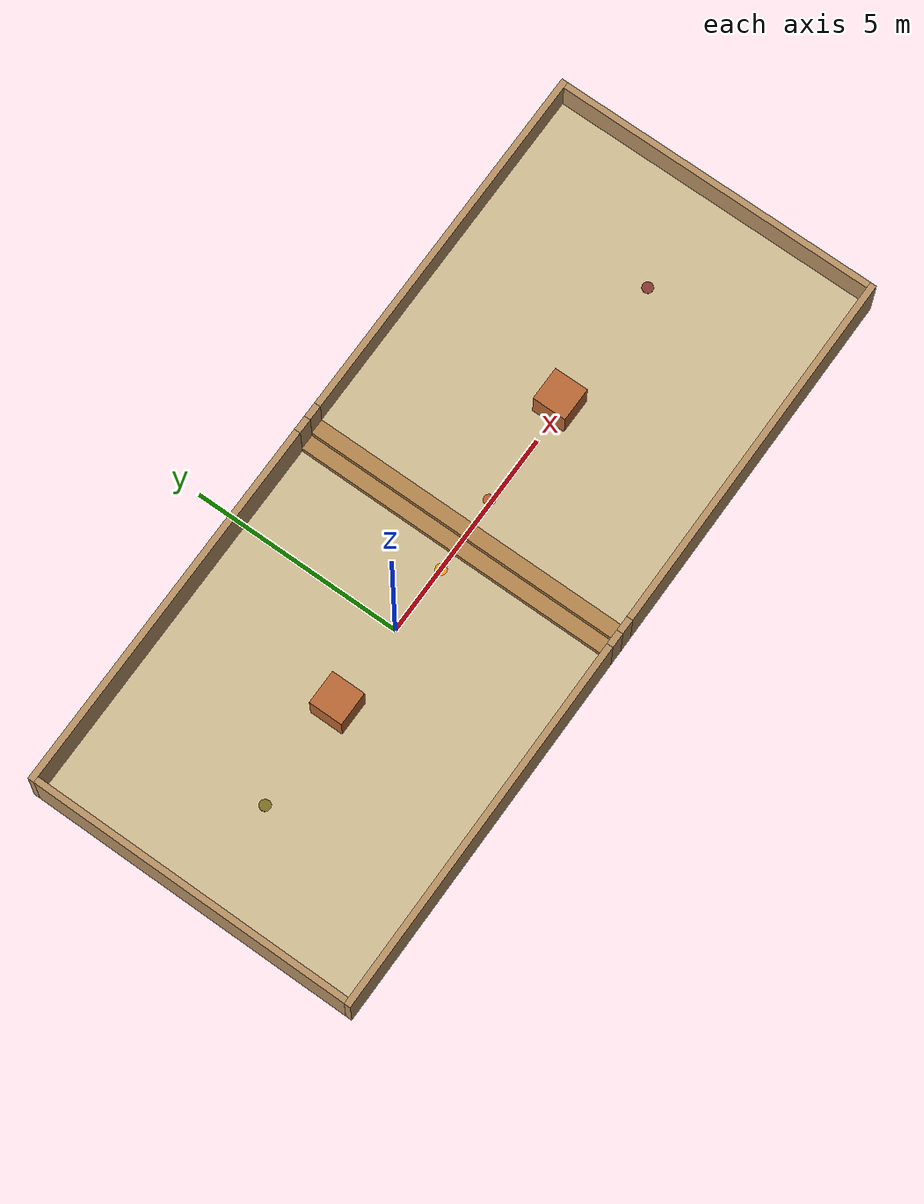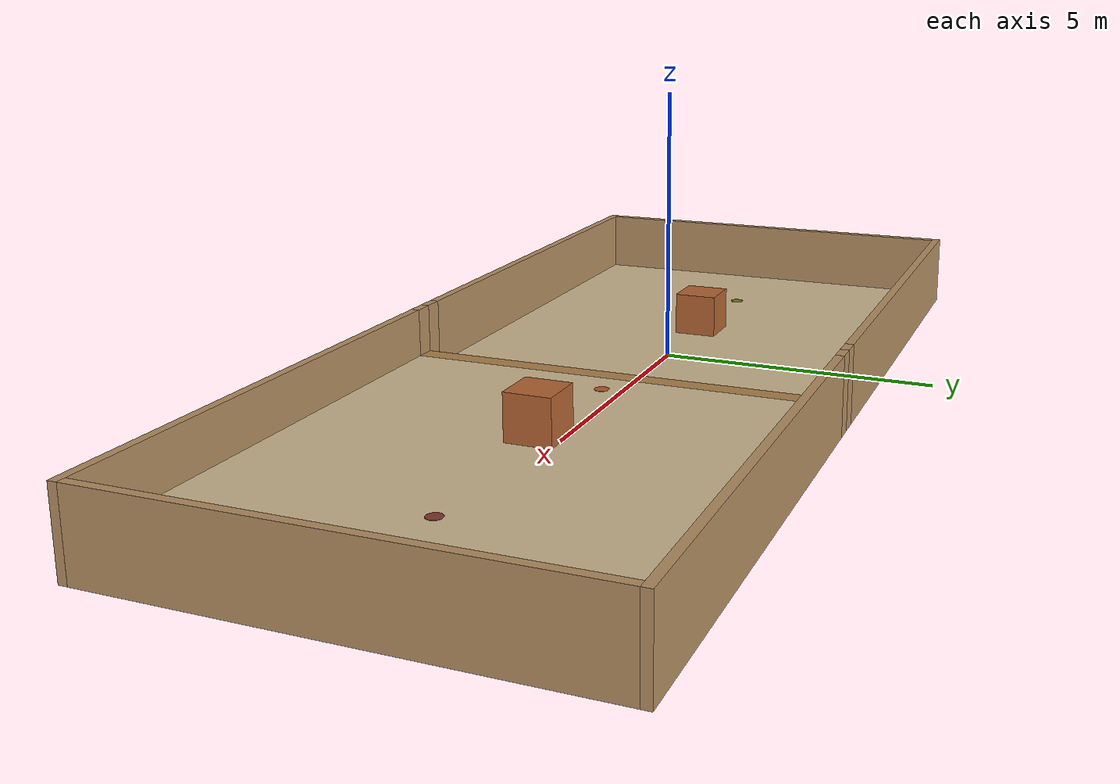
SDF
<?xml version="1.0" encoding="utf-8"?>
<sdf version="1.6">
  <world name="two_steps">
    <gravity>0 0 -9.81</gravity>
    <physics name="default_physics" type="ode">
      <max_step_size>0.001</max_step_size>
      <real_time_update_rate>1000</real_time_update_rate>
    </physics>
    <scene>
      <ambient>0.52 0.52 0.52 1</ambient>
      <background>0.87 0.81 0.71 1</background>
      <shadows>true</shadows>
    </scene>
    <light name="sun" type="directional">
      <pose>0 0 12 0 0 0</pose>
      <cast_shadows>true</cast_shadows>
      <diffuse>0.85 0.85 0.85 1</diffuse>
      <specular>0.15 0.15 0.15 1</specular>
      <direction>-0.4 0.2 -1</direction>
      <attenuation>
        <range>1000</range>
        <constant>0.9</constant>
        <linear>0.01</linear>
        <quadratic>0.001</quadratic>
      </attenuation>
    </light>
    <!-- 地基位于围墙内侧：X=[-6.85,11.35]、Y=[-3.825,3.825]；下层顶面 Z=0。 -->
    <model name="lower_ground">
      <static>true</static>
      <pose>2.25 0 -0.10 0 0 0</pose>
      <link name="body">
        <collision name="collision">
          <geometry>
            <box>
              <size>18.2 7.65 0.20</size>
            </box>
          </geometry>
        </collision>
        <visual name="visual">
          <geometry>
            <box>
              <size>18.2 7.65 0.20</size>
            </box>
          </geometry>
          <material>
            <ambient>0.81 0.73 0.57 1</ambient>
            <diffuse>0.81 0.73 0.57 1</diffuse>
          </material>
        </visual>
      </link>
    </model>
    <!-- 两级楼梯共用暖沙色，两个平台共用奶油色；外围侧面由同色全高围墙封闭。 -->
    <!-- 恰好两级：第一级 X=[2.00,2.35] 顶面 Z=0.17；第二级 X=[2.35,2.70] 顶面 Z=0.34。 -->
    <model name="step_1">
      <static>true</static>
      <pose>2.175 0 0.085 0 0 0</pose>
      <link name="body">
        <collision name="collision">
          <geometry>
            <box>
              <size>0.35 7.65 0.17</size>
            </box>
          </geometry>
        </collision>
        <visual name="visual">
          <geometry>
            <box>
              <size>0.35 7.65 0.17</size>
            </box>
          </geometry>
          <material>
            <ambient>0.70 0.52 0.30 1</ambient>
            <diffuse>0.70 0.52 0.30 1</diffuse>
          </material>
        </visual>
      </link>
    </model>
    <model name="step_2">
      <static>true</static>
      <pose>2.525 0 0.17 0 0 0</pose>
      <link name="body">
        <collision name="collision">
          <geometry>
            <box>
              <size>0.35 7.65 0.34</size>
            </box>
          </geometry>
        </collision>
        <visual name="visual">
          <geometry>
            <box>
              <size>0.35 7.65 0.34</size>
            </box>
          </geometry>
          <material>
            <ambient>0.70 0.52 0.30 1</ambient>
            <diffuse>0.70 0.52 0.30 1</diffuse>
          </material>
        </visual>
      </link>
    </model>
    <!-- 上平台 X=[2.70,11.35]，顶面 Z=0.34，与第二级齐平，无第三级高度变化。 -->
    <model name="upper_platform">
      <static>true</static>
      <pose>7.025 0 0.17 0 0 0</pose>
      <link name="body">
        <collision name="collision">
          <geometry>
            <box>
              <size>8.65 7.65 0.34</size>
            </box>
          </geometry>
        </collision>
        <visual name="visual">
          <geometry>
            <box>
              <size>8.65 7.65 0.34</size>
            </box>
          </geometry>
          <material>
            <ambient>0.81 0.73 0.57 1</ambient>
            <diffuse>0.81 0.73 0.57 1</diffuse>
          </material>
        </visual>
      </link>
    </model>
    <!-- 固定边墙与障碍都有碰撞体，为后续激光提供几何特征；楼梯中央通道保持净空。 -->
    <model name="lower_left_wall">
      <static>true</static>
      <pose>-2.5 3.9 0.50 0 0 0</pose>
      <link name="body">
        <collision name="collision">
          <geometry>
            <box>
              <size>9.0 0.15 1.40</size>
            </box>
          </geometry>
        </collision>
        <visual name="visual">
          <geometry>
            <box>
              <size>9.0 0.15 1.40</size>
            </box>
          </geometry>
          <material>
            <ambient>0.72 0.57 0.39 1</ambient>
            <diffuse>0.72 0.57 0.39 1</diffuse>
          </material>
        </visual>
      </link>
    </model>
    <model name="lower_right_wall">
      <static>true</static>
      <pose>-2.5 -3.9 0.50 0 0 0</pose>
      <link name="body">
        <collision name="collision">
          <geometry>
            <box>
              <size>9.0 0.15 1.40</size>
            </box>
          </geometry>
        </collision>
        <visual name="visual">
          <geometry>
            <box>
              <size>9.0 0.15 1.40</size>
            </box>
          </geometry>
          <material>
            <ambient>0.72 0.57 0.39 1</ambient>
            <diffuse>0.72 0.57 0.39 1</diffuse>
          </material>
        </visual>
      </link>
    </model>
    <!-- 所有围墙统一覆盖世界 Z=[-0.20,1.20]、厚 0.15 m；墙体下延至地基底面，完整包围平台和楼梯，无外露侧面或缺口。 -->
    <model name="step_1_left_wall">
      <static>true</static>
      <pose>2.175 3.9 0.50 0 0 0</pose>
      <link name="body">
        <collision name="collision">
          <geometry>
            <box>
              <size>0.35 0.15 1.40</size>
            </box>
          </geometry>
        </collision>
        <visual name="visual">
          <geometry>
            <box>
              <size>0.35 0.15 1.40</size>
            </box>
          </geometry>
          <material>
            <ambient>0.72 0.57 0.39 1</ambient>
            <diffuse>0.72 0.57 0.39 1</diffuse>
          </material>
        </visual>
      </link>
    </model>
    <model name="step_1_right_wall">
      <static>true</static>
      <pose>2.175 -3.9 0.50 0 0 0</pose>
      <link name="body">
        <collision name="collision">
          <geometry>
            <box>
              <size>0.35 0.15 1.40</size>
            </box>
          </geometry>
        </collision>
        <visual name="visual">
          <geometry>
            <box>
              <size>0.35 0.15 1.40</size>
            </box>
          </geometry>
          <material>
            <ambient>0.72 0.57 0.39 1</ambient>
            <diffuse>0.72 0.57 0.39 1</diffuse>
          </material>
        </visual>
      </link>
    </model>
    <model name="step_2_left_wall">
      <static>true</static>
      <pose>2.525 3.9 0.50 0 0 0</pose>
      <link name="body">
        <collision name="collision">
          <geometry>
            <box>
              <size>0.35 0.15 1.40</size>
            </box>
          </geometry>
        </collision>
        <visual name="visual">
          <geometry>
            <box>
              <size>0.35 0.15 1.40</size>
            </box>
          </geometry>
          <material>
            <ambient>0.72 0.57 0.39 1</ambient>
            <diffuse>0.72 0.57 0.39 1</diffuse>
          </material>
        </visual>
      </link>
    </model>
    <model name="step_2_right_wall">
      <static>true</static>
      <pose>2.525 -3.9 0.50 0 0 0</pose>
      <link name="body">
        <collision name="collision">
          <geometry>
            <box>
              <size>0.35 0.15 1.40</size>
            </box>
          </geometry>
        </collision>
        <visual name="visual">
          <geometry>
            <box>
              <size>0.35 0.15 1.40</size>
            </box>
          </geometry>
          <material>
            <ambient>0.72 0.57 0.39 1</ambient>
            <diffuse>0.72 0.57 0.39 1</diffuse>
          </material>
        </visual>
      </link>
    </model>
    <model name="upper_left_wall">
      <static>true</static>
      <pose>7.1 3.9 0.50 0 0 0</pose>
      <link name="body">
        <collision name="collision">
          <geometry>
            <box>
              <size>8.8 0.15 1.40</size>
            </box>
          </geometry>
        </collision>
        <visual name="visual">
          <geometry>
            <box>
              <size>8.8 0.15 1.40</size>
            </box>
          </geometry>
          <material>
            <ambient>0.72 0.57 0.39 1</ambient>
            <diffuse>0.72 0.57 0.39 1</diffuse>
          </material>
        </visual>
      </link>
    </model>
    <model name="upper_right_wall">
      <static>true</static>
      <pose>7.1 -3.9 0.50 0 0 0</pose>
      <link name="body">
        <collision name="collision">
          <geometry>
            <box>
              <size>8.8 0.15 1.40</size>
            </box>
          </geometry>
        </collision>
        <visual name="visual">
          <geometry>
            <box>
              <size>8.8 0.15 1.40</size>
            </box>
          </geometry>
          <material>
            <ambient>0.72 0.57 0.39 1</ambient>
            <diffuse>0.72 0.57 0.39 1</diffuse>
          </material>
        </visual>
      </link>
    </model>
    <model name="lower_end_wall">
      <static>true</static>
      <pose>-6.925 0 0.50 0 0 0</pose>
      <link name="body">
        <collision name="collision">
          <geometry>
            <box>
              <size>0.15 7.65 1.40</size>
            </box>
          </geometry>
        </collision>
        <visual name="visual">
          <geometry>
            <box>
              <size>0.15 7.65 1.40</size>
            </box>
          </geometry>
          <material>
            <ambient>0.72 0.57 0.39 1</ambient>
            <diffuse>0.72 0.57 0.39 1</diffuse>
          </material>
        </visual>
      </link>
    </model>
    <model name="upper_end_wall">
      <static>true</static>
      <pose>11.425 0 0.50 0 0 0</pose>
      <link name="body">
        <collision name="collision">
          <geometry>
            <box>
              <size>0.15 7.65 1.40</size>
            </box>
          </geometry>
        </collision>
        <visual name="visual">
          <geometry>
            <box>
              <size>0.15 7.65 1.40</size>
            </box>
          </geometry>
          <material>
            <ambient>0.72 0.57 0.39 1</ambient>
            <diffuse>0.72 0.57 0.39 1</diffuse>
          </material>
        </visual>
      </link>
    </model>
    <!-- 仅保留两个橙色主障碍物，覆盖 Y=0 的直线；两侧至侧墙净距均为 3.425 m。 -->
    <model name="lower_obstacle_1">
      <static>true</static>
      <pose>-2 0 0.4 0 0 0</pose>
      <link name="body">
        <collision name="collision">
          <geometry>
            <box>
              <size>0.8 0.8 0.8</size>
            </box>
          </geometry>
        </collision>
        <visual name="visual">
          <geometry>
            <box>
              <size>0.8 0.8 0.8</size>
            </box>
          </geometry>
          <material>
            <ambient>0.72 0.40 0.20 1</ambient>
            <diffuse>0.72 0.40 0.20 1</diffuse>
          </material>
        </visual>
      </link>
    </model>
    <model name="upper_obstacle_1">
      <static>true</static>
      <pose>5.8 0 0.74 0 0 0</pose>
      <link name="body">
        <collision name="collision">
          <geometry>
            <box>
              <size>0.8 0.8 0.8</size>
            </box>
          </geometry>
        </collision>
        <visual name="visual">
          <geometry>
            <box>
              <size>0.8 0.8 0.8</size>
            </box>
          </geometry>
          <material>
            <ambient>0.72 0.40 0.20 1</ambient>
            <diffuse>0.72 0.40 0.20 1</diffuse>
          </material>
        </visual>
      </link>
    </model>
    <!-- World 参考点：A=(-4.5,0,0)，E=(1.6,0,0)，X=(3.3,0,0.34)，B=(9,0,0.34)。彩色圆片仅为视觉标记，无碰撞体。 -->
    <model name="point_A">
      <static>true</static>
      <pose>-4.5 0 0.005 0 0 0</pose>
      <link name="marker">
        <visual name="disc">
          <geometry>
            <cylinder>
              <radius>0.13</radius>
              <length>0.006</length>
            </cylinder>
          </geometry>
          <material>
            <ambient>0.48 0.43 0.12 1</ambient>
            <diffuse>0.48 0.43 0.12 1</diffuse>
          </material>
        </visual>
      </link>
    </model>
    <model name="point_E">
      <static>true</static>
      <pose>1.6 0 0.005 0 0 0</pose>
      <link name="marker">
        <visual name="disc">
          <geometry>
            <cylinder>
              <radius>0.13</radius>
              <length>0.006</length>
            </cylinder>
          </geometry>
          <material>
            <ambient>0.95 0.58 0.10 1</ambient>
            <diffuse>0.95 0.58 0.10 1</diffuse>
          </material>
        </visual>
      </link>
    </model>
    <model name="point_X">
      <static>true</static>
      <pose>3.3 0 0.34500000000000003 0 0 0</pose>
      <link name="marker">
        <visual name="disc">
          <geometry>
            <cylinder>
              <radius>0.13</radius>
              <length>0.006</length>
            </cylinder>
          </geometry>
          <material>
            <ambient>0.73 0.35 0.18 1</ambient>
            <diffuse>0.73 0.35 0.18 1</diffuse>
          </material>
        </visual>
      </link>
    </model>
    <model name="point_B">
      <static>true</static>
      <pose>9 0 0.34500000000000003 0 0 0</pose>
      <link name="marker">
        <visual name="disc">
          <geometry>
            <cylinder>
              <radius>0.13</radius>
              <length>0.006</length>
            </cylinder>
          </geometry>
          <material>
            <ambient>0.52 0.22 0.18 1</ambient>
            <diffuse>0.52 0.22 0.18 1</diffuse>
          </material>
        </visual>
      </link>
    </model>
    <gui fullscreen="0">
      <camera name="overview">
        <pose>-8 -11 9 0 0.52 0.60</pose>
        <view_controller>orbit</view_controller>
      </camera>
    </gui>
  </world>
</sdf>
